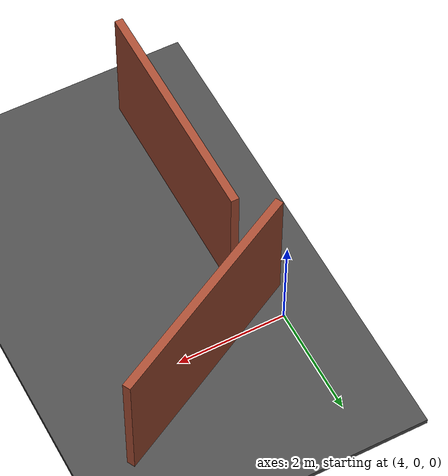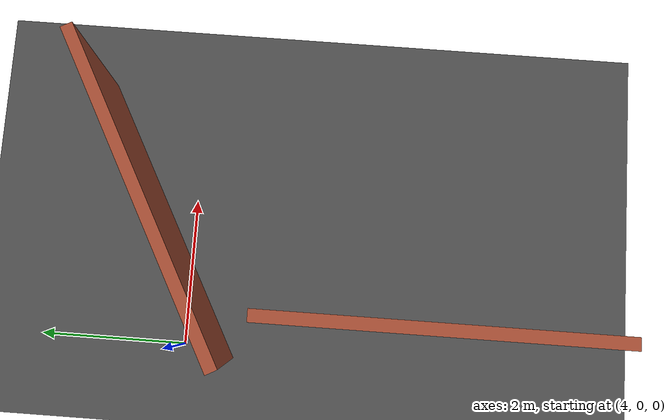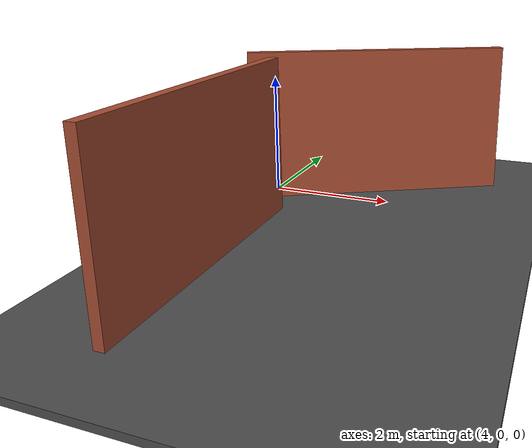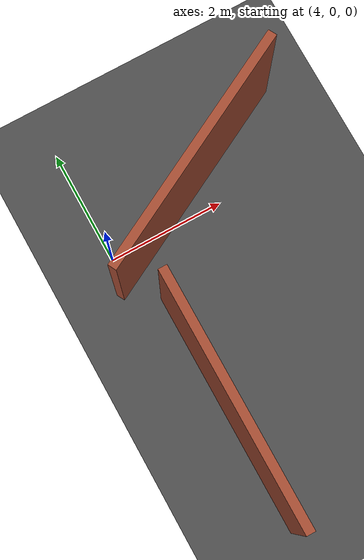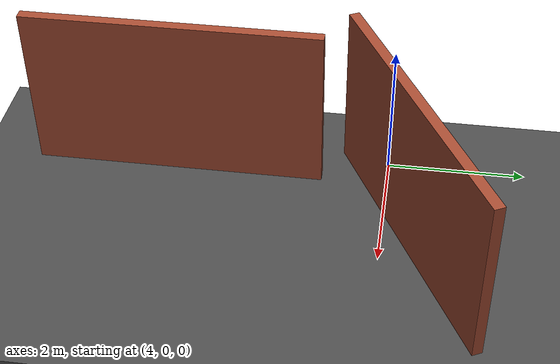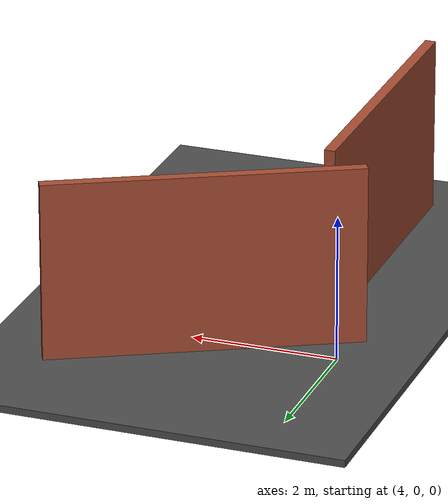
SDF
<sdf version="1.5">
 <world name="default">
  <model name="ground_plane">
   <static>1</static>
   <link name="link">
    <collision name="collision">
     <geometry><plane><normal>0 0 1</normal><size>100 100</size></plane></geometry>
     <surface><friction><ode><mu>100</mu><mu2>50</mu2></ode></friction></surface>
    </collision>
    <visual name="visual">
     <cast_shadows>0</cast_shadows>
     <geometry><plane><normal>0 0 1</normal><size>100 100</size></plane></geometry>
     <material>
      <script><uri>file://media/materials/scripts/gazebo.material</uri><name>Gazebo/Grey</name></script>
     </material>
    </visual>
    <velocity_decay><linear>0</linear><angular>0</angular></velocity_decay>
   </link>
  </model>
  <model name="asphalt_plane">
   <static>1</static>
   <link name="link">
    <collision name="collision"><geometry><box><size>20 20 0.1</size></box></geometry></collision>
    <visual name="visual">
     <cast_shadows>0</cast_shadows>
     <geometry><box><size>20 20 0.1</size></box></geometry>
     <material>
      <script>
       <uri>model://asphalt_plane/materials/scripts</uri>
       <uri>model://asphalt_plane/materials/textures</uri>
       <name>vrc/asphalt</name>
      </script>
     </material>
    </visual>
    <velocity_decay><linear>0</linear><angular>0</angular></velocity_decay>
   </link>
   <pose>0.076733 -0.110379 0 0 -0 0</pose>
  </model>
  <model name="worlds">
   <pose>4.45045 -3.07992 0 0 -0 0</pose>
   <link name="Wall_0">
    <collision name="Wall_0_Collision">
     <geometry><box><size>4.25 0.15 2.5</size></box></geometry>
     <pose>0 0 1.25 0 -0 0</pose>
    </collision>
    <visual name="Wall_0_Visual">
     <pose>0 0 1.25 0 -0 0</pose>
     <geometry><box><size>4.25 0.15 2.5</size></box></geometry>
     <material>
      <script><uri>file://media/materials/scripts/gazebo.material</uri><name>Gazebo/Bricks</name></script>
      <ambient>1 1 1 1</ambient>
     </material>
    </visual>
    <pose>0 -0 0 0 -0 1.5708</pose>
   </link>
   <static>1</static>
  </model>
  <model name="worlds_0">
   <pose>5.69388 0.374648 0 0 0 -1.0847</pose>
   <link name="Wall_0">
    <collision name="Wall_0_Collision">
     <geometry><box><size>4.25 0.15 2.5</size></box></geometry>
     <pose>0 0 1.25 0 -0 0</pose>
    </collision>
    <visual name="Wall_0_Visual">
     <pose>0 0 1.25 0 -0 0</pose>
     <geometry><box><size>4.25 0.15 2.5</size></box></geometry>
     <material>
      <script><uri>file://media/materials/scripts/gazebo.material</uri><name>Gazebo/Bricks</name></script>
      <ambient>1 1 1 1</ambient>
     </material>
    </visual>
    <pose>0 -0 0 0 -0 1.5708</pose>
   </link>
   <static>1</static>
  </model>
 </world>
</sdf>
